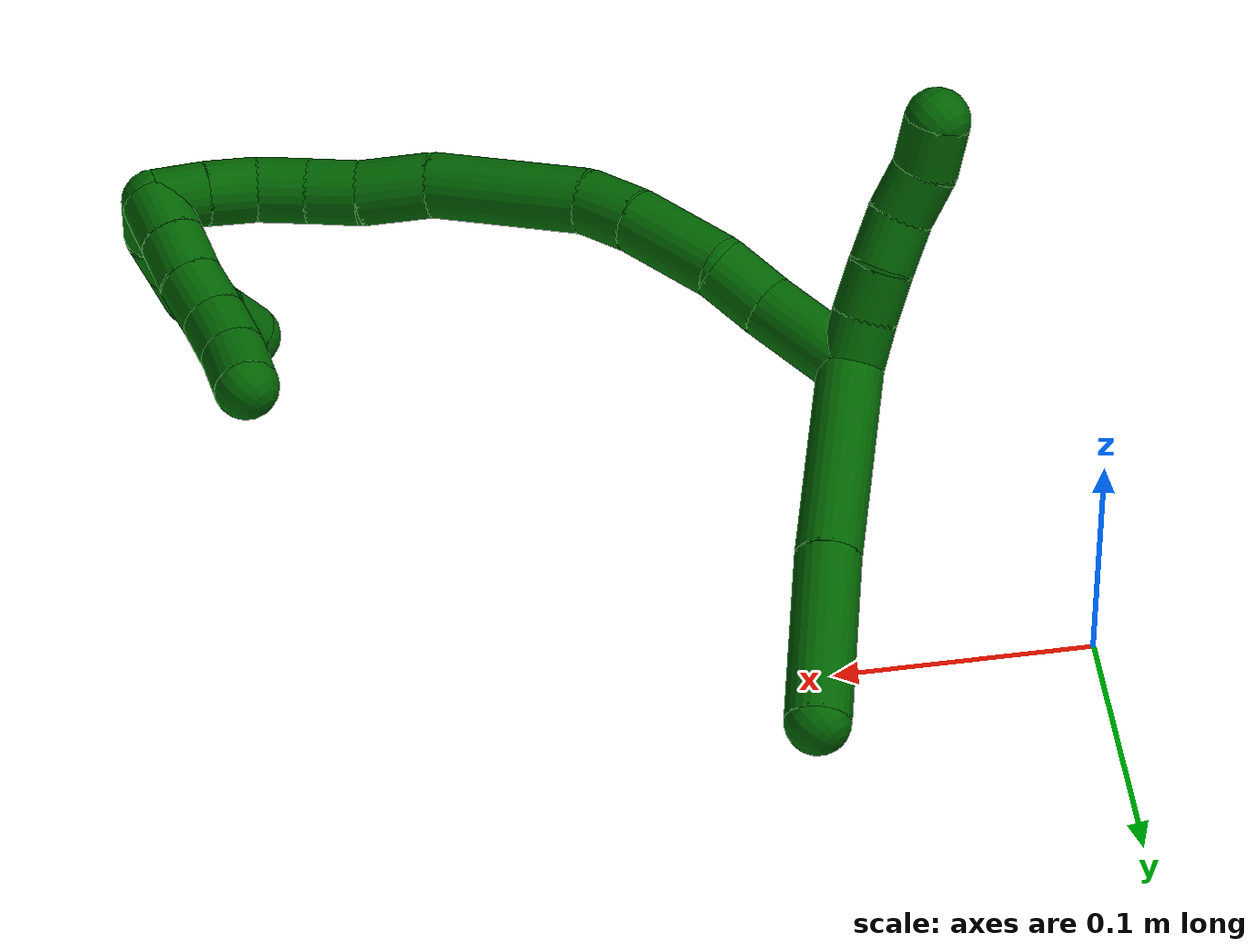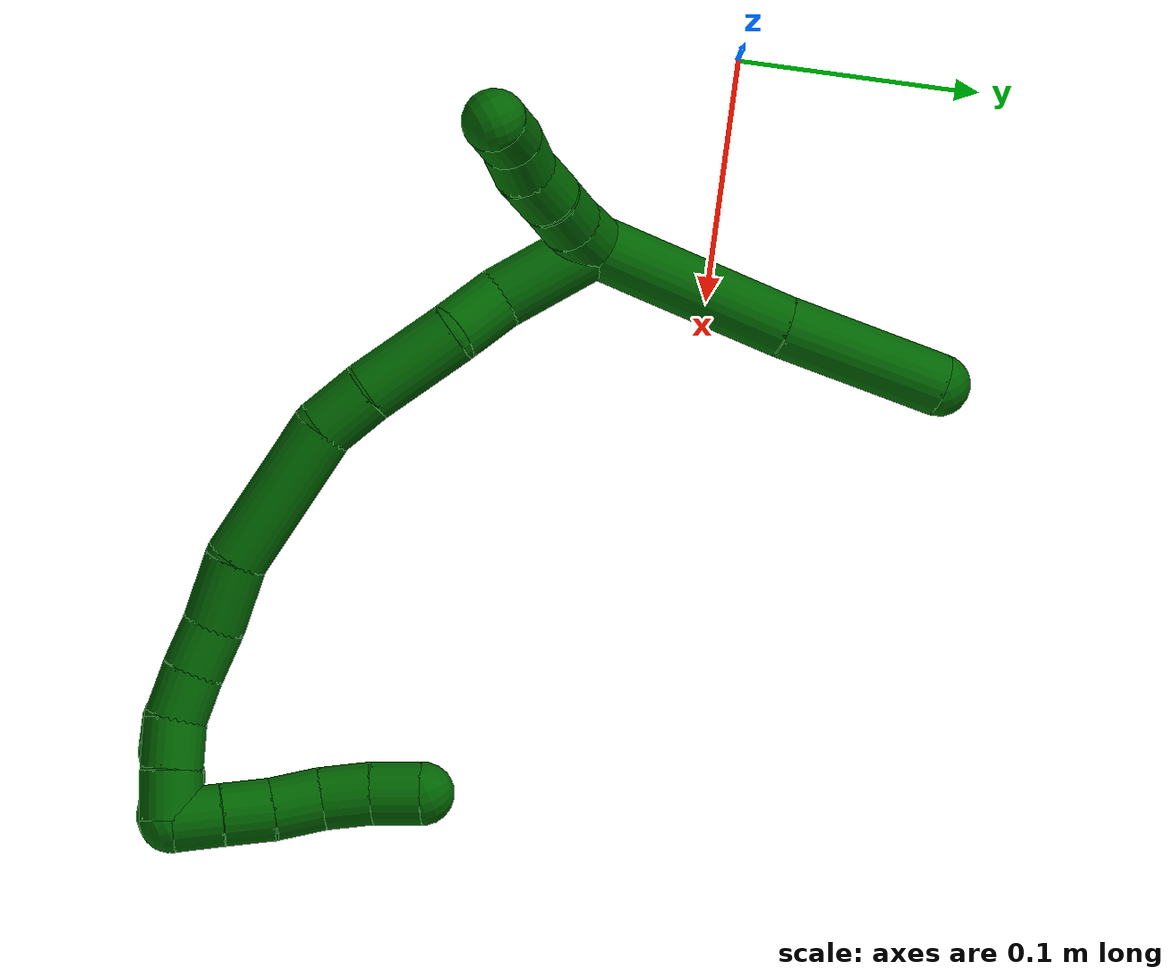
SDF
<sdf version="1.7">
 <world name="default">
  <model name="6">
   <static>0</static>
   <link name="6">
    <collision name="collision-cylinder-e_1_2_8">
     <pose>0.02612 -0.014613 0.027763 0.484508 0.694264 0.178323</pose>
     <geometry><cylinder><radius>0.0125</radius><length>0.081648</length></cylinder></geometry>
     <surface>
      <friction><ode><mu>1.16</mu><mu2>1.16</mu2><slip1>0</slip1><slip2>0</slip2></ode></friction>
      <contact><ode><kp>1e+06</kp><kd>1</kd><max_vel>0</max_vel><min_depth>0.001</min_depth></ode></contact>
     </surface>
    </collision>
    <visual name="visual-cylinder-e_1_2_8">
     <pose>0.02612 -0.014613 0.027763 0.484508 0.694264 0.178323</pose>
     <geometry><cylinder><radius>0.0125</radius><length>0.081648</length></cylinder></geometry>
     <material><ambient>0 0.392157 0.003922 1</ambient></material>
    </visual>
    <collision name="collision-cylinder-e_2_8_6">
     <pose>0.073308 -0.040519 0.079952 0.433045 0.664249 0.151446</pose>
     <geometry><cylinder><radius>0.0125</radius><length>0.068352</length></cylinder></geometry>
     <surface>
      <friction><ode><mu>1.16</mu><mu2>1.16</mu2><slip1>0</slip1><slip2>0</slip2></ode></friction>
      <contact><ode><kp>1e+06</kp><kd>1</kd><max_vel>0</max_vel><min_depth>0.001</min_depth></ode></contact>
     </surface>
    </collision>
    <visual name="visual-cylinder-e_2_8_6">
     <pose>0.073308 -0.040519 0.079952 0.433045 0.664249 0.151446</pose>
     <geometry><cylinder><radius>0.0125</radius><length>0.068352</length></cylinder></geometry>
     <material><ambient>0 0.392157 0.003922 1</ambient></material>
    </visual>
    <collision name="collision-cylinder-e_1_2_9">
     <pose>-0.008822 -0.002455 -0.004017 2.59302 -1.08058 -2.26435</pose>
     <geometry><cylinder><radius>0.0125</radius><length>0.02</length></cylinder></geometry>
     <surface>
      <friction><ode><mu>1.16</mu><mu2>1.16</mu2><slip1>0</slip1><slip2>0</slip2></ode></friction>
      <contact><ode><kp>1e+06</kp><kd>1</kd><max_vel>0</max_vel><min_depth>0.001</min_depth></ode></contact>
     </surface>
    </collision>
    <visual name="visual-cylinder-e_1_2_9">
     <pose>-0.008822 -0.002455 -0.004017 2.59302 -1.08058 -2.26435</pose>
     <geometry><cylinder><radius>0.0125</radius><length>0.02</length></cylinder></geometry>
     <material><ambient>0 0.392157 0.003922 1</ambient></material>
    </visual>
    <collision name="collision-cylinder-e_2_9_10">
     <pose>-0.026618 -0.007924 -0.011259 2.38999 -1.11371 -2.01187</pose>
     <geometry><cylinder><radius>0.0125</radius><length>0.02</length></cylinder></geometry>
     <surface>
      <friction><ode><mu>1.16</mu><mu2>1.16</mu2><slip1>0</slip1><slip2>0</slip2></ode></friction>
      <contact><ode><kp>1e+06</kp><kd>1</kd><max_vel>0</max_vel><min_depth>0.001</min_depth></ode></contact>
     </surface>
    </collision>
    <visual name="visual-cylinder-e_2_9_10">
     <pose>-0.026618 -0.007924 -0.011259 2.38999 -1.11371 -2.01187</pose>
     <geometry><cylinder><radius>0.0125</radius><length>0.02</length></cylinder></geometry>
     <material><ambient>0 0.392157 0.003922 1</ambient></material>
    </visual>
    <collision name="collision-cylinder-e_3_10_11">
     <pose>-0.044793 -0.012631 -0.018012 2.69402 -1.16858 -2.47867</pose>
     <geometry><cylinder><radius>0.0125</radius><length>0.02</length></cylinder></geometry>
     <surface>
      <friction><ode><mu>1.16</mu><mu2>1.16</mu2><slip1>0</slip1><slip2>0</slip2></ode></friction>
      <contact><ode><kp>1e+06</kp><kd>1</kd><max_vel>0</max_vel><min_depth>0.001</min_depth></ode></contact>
     </surface>
    </collision>
    <visual name="visual-cylinder-e_3_10_11">
     <pose>-0.044793 -0.012631 -0.018012 2.69402 -1.16858 -2.47867</pose>
     <geometry><cylinder><radius>0.0125</radius><length>0.02</length></cylinder></geometry>
     <material><ambient>0 0.392157 0.003922 1</ambient></material>
    </visual>
    <collision name="collision-cylinder-e_4_11_12">
     <pose>-0.063449 -0.017153 -0.023165 2.0919 -1.23867 -1.77733</pose>
     <geometry><cylinder><radius>0.0125</radius><length>0.02</length></cylinder></geometry>
     <surface>
      <friction><ode><mu>1.16</mu><mu2>1.16</mu2><slip1>0</slip1><slip2>0</slip2></ode></friction>
      <contact><ode><kp>1e+06</kp><kd>1</kd><max_vel>0</max_vel><min_depth>0.001</min_depth></ode></contact>
     </surface>
    </collision>
    <visual name="visual-cylinder-e_4_11_12">
     <pose>-0.063449 -0.017153 -0.023165 2.0919 -1.23867 -1.77733</pose>
     <geometry><cylinder><radius>0.0125</radius><length>0.02</length></cylinder></geometry>
     <material><ambient>0 0.392157 0.003922 1</ambient></material>
    </visual>
    <collision name="collision-cylinder-e_5_12_5">
     <pose>-0.081198 -0.024663 -0.027832 2.14732 -0.978267 -1.5516</pose>
     <geometry><cylinder><radius>0.0125</radius><length>0.02</length></cylinder></geometry>
     <surface>
      <friction><ode><mu>1.16</mu><mu2>1.16</mu2><slip1>0</slip1><slip2>0</slip2></ode></friction>
      <contact><ode><kp>1e+06</kp><kd>1</kd><max_vel>0</max_vel><min_depth>0.001</min_depth></ode></contact>
     </surface>
    </collision>
    <visual name="visual-cylinder-e_5_12_5">
     <pose>-0.081198 -0.024663 -0.027832 2.14732 -0.978267 -1.5516</pose>
     <geometry><cylinder><radius>0.0125</radius><length>0.02</length></cylinder></geometry>
     <material><ambient>0 0.392157 0.003922 1</ambient></material>
    </visual>
    <collision name="collision-cylinder-e_1_2_13">
     <pose>0.00331 0.002162 -0.020961 -3.03883 0.155828 -1.97662</pose>
     <geometry><cylinder><radius>0.0125</radius><length>0.042661</length></cylinder></geometry>
     <surface>
      <friction><ode><mu>1.16</mu><mu2>1.16</mu2><slip1>0</slip1><slip2>0</slip2></ode></friction>
      <contact><ode><kp>1e+06</kp><kd>1</kd><max_vel>0</max_vel><min_depth>0.001</min_depth></ode></contact>
     </surface>
    </collision>
    <visual name="visual-cylinder-e_1_2_13">
     <pose>0.00331 0.002162 -0.020961 -3.03883 0.155828 -1.97662</pose>
     <geometry><cylinder><radius>0.0125</radius><length>0.042661</length></cylinder></geometry>
     <material><ambient>0 0.392157 0.003922 1</ambient></material>
    </visual>
    <collision name="collision-cylinder-e_2_13_14">
     <pose>0.00769 0.001837 -0.053405 2.9284 0.090707 0.802299</pose>
     <geometry><cylinder><radius>0.0125</radius><length>0.023596</length></cylinder></geometry>
     <surface>
      <friction><ode><mu>1.16</mu><mu2>1.16</mu2><slip1>0</slip1><slip2>0</slip2></ode></friction>
      <contact><ode><kp>1e+06</kp><kd>1</kd><max_vel>0</max_vel><min_depth>0.001</min_depth></ode></contact>
     </surface>
    </collision>
    <visual name="visual-cylinder-e_2_13_14">
     <pose>0.00769 0.001837 -0.053405 2.9284 0.090707 0.802299</pose>
     <geometry><cylinder><radius>0.0125</radius><length>0.023596</length></cylinder></geometry>
     <material><ambient>0 0.392157 0.003922 1</ambient></material>
    </visual>
    <collision name="collision-cylinder-e_3_14_15">
     <pose>0.013962 0.000955 -0.084257 -3.059 0.261591 -2.53289</pose>
     <geometry><cylinder><radius>0.0125</radius><length>0.040238</length></cylinder></geometry>
     <surface>
      <friction><ode><mu>1.16</mu><mu2>1.16</mu2><slip1>0</slip1><slip2>0</slip2></ode></friction>
      <contact><ode><kp>1e+06</kp><kd>1</kd><max_vel>0</max_vel><min_depth>0.001</min_depth></ode></contact>
     </surface>
    </collision>
    <visual name="visual-cylinder-e_3_14_15">
     <pose>0.013962 0.000955 -0.084257 -3.059 0.261591 -2.53289</pose>
     <geometry><cylinder><radius>0.0125</radius><length>0.040238</length></cylinder></geometry>
     <material><ambient>0 0.392157 0.003922 1</ambient></material>
    </visual>
    <collision name="collision-cylinder-e_4_15_16">
     <pose>0.023351 0.00382 -0.114134 -3.02209 0.376652 -2.53327</pose>
     <geometry><cylinder><radius>0.0125</radius><length>0.022763</length></cylinder></geometry>
     <surface>
      <friction><ode><mu>1.16</mu><mu2>1.16</mu2><slip1>0</slip1><slip2>0</slip2></ode></friction>
      <contact><ode><kp>1e+06</kp><kd>1</kd><max_vel>0</max_vel><min_depth>0.001</min_depth></ode></contact>
     </surface>
    </collision>
    <visual name="visual-cylinder-e_4_15_16">
     <pose>0.023351 0.00382 -0.114134 -3.02209 0.376652 -2.53327</pose>
     <geometry><cylinder><radius>0.0125</radius><length>0.022763</length></cylinder></geometry>
     <material><ambient>0 0.392157 0.003922 1</ambient></material>
    </visual>
    <collision name="collision-cylinder-e_5_16_17">
     <pose>0.046226 0.004256 -0.149591 3.1085 0.642673 3.04224</pose>
     <geometry><cylinder><radius>0.0125</radius><length>0.062367</length></cylinder></geometry>
     <surface>
      <friction><ode><mu>1.16</mu><mu2>1.16</mu2><slip1>0</slip1><slip2>0</slip2></ode></friction>
      <contact><ode><kp>1e+06</kp><kd>1</kd><max_vel>0</max_vel><min_depth>0.001</min_depth></ode></contact>
     </surface>
    </collision>
    <visual name="visual-cylinder-e_5_16_17">
     <pose>0.046226 0.004256 -0.149591 3.1085 0.642673 3.04224</pose>
     <geometry><cylinder><radius>0.0125</radius><length>0.062367</length></cylinder></geometry>
     <material><ambient>0 0.392157 0.003922 1</ambient></material>
    </visual>
    <collision name="collision-cylinder-e_6_17_18">
     <pose>0.07571 0.001693 -0.18348 2.94972 0.869946 2.73317</pose>
     <geometry><cylinder><radius>0.0125</radius><length>0.028247</length></cylinder></geometry>
     <surface>
      <friction><ode><mu>1.16</mu><mu2>1.16</mu2><slip1>0</slip1><slip2>0</slip2></ode></friction>
      <contact><ode><kp>1e+06</kp><kd>1</kd><max_vel>0</max_vel><min_depth>0.001</min_depth></ode></contact>
     </surface>
    </collision>
    <visual name="visual-cylinder-e_6_17_18">
     <pose>0.07571 0.001693 -0.18348 2.94972 0.869946 2.73317</pose>
     <geometry><cylinder><radius>0.0125</radius><length>0.028247</length></cylinder></geometry>
     <material><ambient>0 0.392157 0.003922 1</ambient></material>
    </visual>
    <collision name="collision-cylinder-e_7_18_19">
     <pose>0.093124 -0.001931 -0.199758 2.88989 0.718112 2.49134</pose>
     <geometry><cylinder><radius>0.0125</radius><length>0.020121</length></cylinder></geometry>
     <surface>
      <friction><ode><mu>1.16</mu><mu2>1.16</mu2><slip1>0</slip1><slip2>0</slip2></ode></friction>
      <contact><ode><kp>1e+06</kp><kd>1</kd><max_vel>0</max_vel><min_depth>0.001</min_depth></ode></contact>
     </surface>
    </collision>
    <visual name="visual-cylinder-e_7_18_19">
     <pose>0.093124 -0.001931 -0.199758 2.88989 0.718112 2.49134</pose>
     <geometry><cylinder><radius>0.0125</radius><length>0.020121</length></cylinder></geometry>
     <material><ambient>0 0.392157 0.003922 1</ambient></material>
    </visual>
    <collision name="collision-cylinder-e_8_19_20">
     <pose>0.106394 -0.006524 -0.214057 2.77079 0.727409 2.22595</pose>
     <geometry><cylinder><radius>0.0125</radius><length>0.020002</length></cylinder></geometry>
     <surface>
      <friction><ode><mu>1.16</mu><mu2>1.16</mu2><slip1>0</slip1><slip2>0</slip2></ode></friction>
      <contact><ode><kp>1e+06</kp><kd>1</kd><max_vel>0</max_vel><min_depth>0.001</min_depth></ode></contact>
     </surface>
    </collision>
    <visual name="visual-cylinder-e_8_19_20">
     <pose>0.106394 -0.006524 -0.214057 2.77079 0.727409 2.22595</pose>
     <geometry><cylinder><radius>0.0125</radius><length>0.020002</length></cylinder></geometry>
     <material><ambient>0 0.392157 0.003922 1</ambient></material>
    </visual>
    <collision name="collision-cylinder-e_9_20_21">
     <pose>0.120096 -0.01428 -0.226 2.34944 0.782557 1.55725</pose>
     <geometry><cylinder><radius>0.0125</radius><length>0.020004</length></cylinder></geometry>
     <surface>
      <friction><ode><mu>1.16</mu><mu2>1.16</mu2><slip1>0</slip1><slip2>0</slip2></ode></friction>
      <contact><ode><kp>1e+06</kp><kd>1</kd><max_vel>0</max_vel><min_depth>0.001</min_depth></ode></contact>
     </surface>
    </collision>
    <visual name="visual-cylinder-e_9_20_21">
     <pose>0.120096 -0.01428 -0.226 2.34944 0.782557 1.55725</pose>
     <geometry><cylinder><radius>0.0125</radius><length>0.020004</length></cylinder></geometry>
     <material><ambient>0 0.392157 0.003922 1</ambient></material>
    </visual>
    <collision name="collision-cylinder-e_10_21_1">
     <pose>0.134604 -0.024376 -0.235335 2.28254 0.841269 1.54713</pose>
     <geometry><cylinder><radius>0.0125</radius><length>0.020001</length></cylinder></geometry>
     <surface>
      <friction><ode><mu>1.16</mu><mu2>1.16</mu2><slip1>0</slip1><slip2>0</slip2></ode></friction>
      <contact><ode><kp>1e+06</kp><kd>1</kd><max_vel>0</max_vel><min_depth>0.001</min_depth></ode></contact>
     </surface>
    </collision>
    <visual name="visual-cylinder-e_10_21_1">
     <pose>0.134604 -0.024376 -0.235335 2.28254 0.841269 1.54713</pose>
     <geometry><cylinder><radius>0.0125</radius><length>0.020001</length></cylinder></geometry>
     <material><ambient>0 0.392157 0.003922 1</ambient></material>
    </visual>
    <collision name="collision-cylinder-e_1_1_22">
     <pose>0.144206 -0.031934 -0.23025 0.259899 0.21635 0.028383</pose>
     <geometry><cylinder><radius>0.0125</radius><length>0.02</length></cylinder></geometry>
     <surface>
      <friction><ode><mu>1.16</mu><mu2>1.16</mu2><slip1>0</slip1><slip2>0</slip2></ode></friction>
      <contact><ode><kp>1e+06</kp><kd>1</kd><max_vel>0</max_vel><min_depth>0.001</min_depth></ode></contact>
     </surface>
    </collision>
    <visual name="visual-cylinder-e_1_1_22">
     <pose>0.144206 -0.031934 -0.23025 0.259899 0.21635 0.028383</pose>
     <geometry><cylinder><radius>0.0125</radius><length>0.02</length></cylinder></geometry>
     <material><ambient>0 0.392157 0.003922 1</ambient></material>
    </visual>
    <collision name="collision-cylinder-e_2_22_23">
     <pose>0.148777 -0.036726 -0.211382 0.237507 0.244878 0.029362</pose>
     <geometry><cylinder><radius>0.0125</radius><length>0.02</length></cylinder></geometry>
     <surface>
      <friction><ode><mu>1.16</mu><mu2>1.16</mu2><slip1>0</slip1><slip2>0</slip2></ode></friction>
      <contact><ode><kp>1e+06</kp><kd>1</kd><max_vel>0</max_vel><min_depth>0.001</min_depth></ode></contact>
     </surface>
    </collision>
    <visual name="visual-cylinder-e_2_22_23">
     <pose>0.148777 -0.036726 -0.211382 0.237507 0.244878 0.029362</pose>
     <geometry><cylinder><radius>0.0125</radius><length>0.02</length></cylinder></geometry>
     <material><ambient>0 0.392157 0.003922 1</ambient></material>
    </visual>
    <collision name="collision-cylinder-e_3_23_24">
     <pose>0.152654 -0.040946 -0.19225 0.197118 0.145833 0.014445</pose>
     <geometry><cylinder><radius>0.0125</radius><length>0.02</length></cylinder></geometry>
     <surface>
      <friction><ode><mu>1.16</mu><mu2>1.16</mu2><slip1>0</slip1><slip2>0</slip2></ode></friction>
      <contact><ode><kp>1e+06</kp><kd>1</kd><max_vel>0</max_vel><min_depth>0.001</min_depth></ode></contact>
     </surface>
    </collision>
    <visual name="visual-cylinder-e_3_23_24">
     <pose>0.152654 -0.040946 -0.19225 0.197118 0.145833 0.014445</pose>
     <geometry><cylinder><radius>0.0125</radius><length>0.02</length></cylinder></geometry>
     <material><ambient>0 0.392157 0.003922 1</ambient></material>
    </visual>
    <collision name="collision-cylinder-e_4_24_25">
     <pose>0.155453 -0.046575 -0.173352 0.381679 0.134983 0.026116</pose>
     <geometry><cylinder><radius>0.0125</radius><length>0.02</length></cylinder></geometry>
     <surface>
      <friction><ode><mu>1.16</mu><mu2>1.16</mu2><slip1>0</slip1><slip2>0</slip2></ode></friction>
      <contact><ode><kp>1e+06</kp><kd>1</kd><max_vel>0</max_vel><min_depth>0.001</min_depth></ode></contact>
     </surface>
    </collision>
    <visual name="visual-cylinder-e_4_24_25">
     <pose>0.155453 -0.046575 -0.173352 0.381679 0.134983 0.026116</pose>
     <geometry><cylinder><radius>0.0125</radius><length>0.02</length></cylinder></geometry>
     <material><ambient>0 0.392157 0.003922 1</ambient></material>
    </visual>
    <collision name="collision-cylinder-e_5_25_4">
     <pose>0.158696 -0.0549 -0.1555 0.491593 0.190844 0.048013</pose>
     <geometry><cylinder><radius>0.0125</radius><length>0.02</length></cylinder></geometry>
     <surface>
      <friction><ode><mu>1.16</mu><mu2>1.16</mu2><slip1>0</slip1><slip2>0</slip2></ode></friction>
      <contact><ode><kp>1e+06</kp><kd>1</kd><max_vel>0</max_vel><min_depth>0.001</min_depth></ode></contact>
     </surface>
    </collision>
    <visual name="visual-cylinder-e_5_25_4">
     <pose>0.158696 -0.0549 -0.1555 0.491593 0.190844 0.048013</pose>
     <geometry><cylinder><radius>0.0125</radius><length>0.02</length></cylinder></geometry>
     <material><ambient>0 0.392157 0.003922 1</ambient></material>
    </visual>
    <collision name="collision-cylinder-e_1_1_26">
     <pose>0.147111 -0.020841 -0.238787 -1.46612 0.529595 -0.478967</pose>
     <geometry><cylinder><radius>0.0125</radius><length>0.02</length></cylinder></geometry>
     <surface>
      <friction><ode><mu>1.16</mu><mu2>1.16</mu2><slip1>0</slip1><slip2>0</slip2></ode></friction>
      <contact><ode><kp>1e+06</kp><kd>1</kd><max_vel>0</max_vel><min_depth>0.001</min_depth></ode></contact>
     </surface>
    </collision>
    <visual name="visual-cylinder-e_1_1_26">
     <pose>0.147111 -0.020841 -0.238787 -1.46612 0.529595 -0.478967</pose>
     <geometry><cylinder><radius>0.0125</radius><length>0.02</length></cylinder></geometry>
     <material><ambient>0 0.392157 0.003922 1</ambient></material>
    </visual>
    <collision name="collision-cylinder-e_2_26_27">
     <pose>0.154922 -0.003173 -0.234746 -1.23803 0.279583 -0.199822</pose>
     <geometry><cylinder><radius>0.0125</radius><length>0.02</length></cylinder></geometry>
     <surface>
      <friction><ode><mu>1.16</mu><mu2>1.16</mu2><slip1>0</slip1><slip2>0</slip2></ode></friction>
      <contact><ode><kp>1e+06</kp><kd>1</kd><max_vel>0</max_vel><min_depth>0.001</min_depth></ode></contact>
     </surface>
    </collision>
    <visual name="visual-cylinder-e_2_26_27">
     <pose>0.154922 -0.003173 -0.234746 -1.23803 0.279583 -0.199822</pose>
     <geometry><cylinder><radius>0.0125</radius><length>0.02</length></cylinder></geometry>
     <material><ambient>0 0.392157 0.003922 1</ambient></material>
    </visual>
    <collision name="collision-cylinder-e_3_27_28">
     <pose>0.160431 0.014997 -0.228462 -1.23765 0.278517 -0.198976</pose>
     <geometry><cylinder><radius>0.0125</radius><length>0.02</length></cylinder></geometry>
     <surface>
      <friction><ode><mu>1.16</mu><mu2>1.16</mu2><slip1>0</slip1><slip2>0</slip2></ode></friction>
      <contact><ode><kp>1e+06</kp><kd>1</kd><max_vel>0</max_vel><min_depth>0.001</min_depth></ode></contact>
     </surface>
    </collision>
    <visual name="visual-cylinder-e_3_27_28">
     <pose>0.160431 0.014997 -0.228462 -1.23765 0.278517 -0.198976</pose>
     <geometry><cylinder><radius>0.0125</radius><length>0.02</length></cylinder></geometry>
     <material><ambient>0 0.392157 0.003922 1</ambient></material>
    </visual>
    <collision name="collision-cylinder-e_4_28_29">
     <pose>0.164175 0.033825 -0.223293 -1.36587 0.099678 -0.081114</pose>
     <geometry><cylinder><radius>0.0125</radius><length>0.02</length></cylinder></geometry>
     <surface>
      <friction><ode><mu>1.16</mu><mu2>1.16</mu2><slip1>0</slip1><slip2>0</slip2></ode></friction>
      <contact><ode><kp>1e+06</kp><kd>1</kd><max_vel>0</max_vel><min_depth>0.001</min_depth></ode></contact>
     </surface>
    </collision>
    <visual name="visual-cylinder-e_4_28_29">
     <pose>0.164175 0.033825 -0.223293 -1.36587 0.099678 -0.081114</pose>
     <geometry><cylinder><radius>0.0125</radius><length>0.02</length></cylinder></geometry>
     <material><ambient>0 0.392157 0.003922 1</ambient></material>
    </visual>
    <collision name="collision-cylinder-e_5_29_3">
     <pose>0.164895 0.052593 -0.216972 -1.12657 -0.027541 0.017393</pose>
     <geometry><cylinder><radius>0.0125</radius><length>0.02</length></cylinder></geometry>
     <surface>
      <friction><ode><mu>1.16</mu><mu2>1.16</mu2><slip1>0</slip1><slip2>0</slip2></ode></friction>
      <contact><ode><kp>1e+06</kp><kd>1</kd><max_vel>0</max_vel><min_depth>0.001</min_depth></ode></contact>
     </surface>
    </collision>
    <visual name="visual-cylinder-e_5_29_3">
     <pose>0.164895 0.052593 -0.216972 -1.12657 -0.027541 0.017393</pose>
     <geometry><cylinder><radius>0.0125</radius><length>0.02</length></cylinder></geometry>
     <material><ambient>0 0.392157 0.003922 1</ambient></material>
    </visual>
    <collision name="collision-sphere-3">
     <pose>0.16462 0.061619 -0.212676 0 -0 0</pose>
     <geometry><sphere><radius>0.0125</radius></sphere></geometry>
     <surface>
      <friction><ode><mu>1.16</mu><mu2>1.16</mu2><slip1>0</slip1><slip2>0</slip2></ode></friction>
      <contact><ode><kp>1e+06</kp><kd>1</kd><max_vel>0</max_vel><min_depth>0.001</min_depth></ode></contact>
     </surface>
    </collision>
    <visual name="visual-sphere-3">
     <pose>0.16462 0.061619 -0.212676 0 -0 0</pose>
     <geometry><sphere><radius>0.0125</radius></sphere></geometry>
     <material><ambient>0 0.392157 0.003922 1</ambient></material>
    </visual>
    <collision name="collision-sphere-29">
     <pose>0.165171 0.043567 -0.221268 0 -0 0</pose>
     <geometry><sphere><radius>0.0125</radius></sphere></geometry>
     <surface>
      <friction><ode><mu>1.16</mu><mu2>1.16</mu2><slip1>0</slip1><slip2>0</slip2></ode></friction>
      <contact><ode><kp>1e+06</kp><kd>1</kd><max_vel>0</max_vel><min_depth>0.001</min_depth></ode></contact>
     </surface>
    </collision>
    <visual name="visual-sphere-29">
     <pose>0.165171 0.043567 -0.221268 0 -0 0</pose>
     <geometry><sphere><radius>0.0125</radius></sphere></geometry>
     <material><ambient>0 0.392157 0.003922 1</ambient></material>
    </visual>
    <collision name="collision-sphere-28">
     <pose>0.16318 0.024083 -0.225318 0 -0 0</pose>
     <geometry><sphere><radius>0.0125</radius></sphere></geometry>
     <surface>
      <friction><ode><mu>1.16</mu><mu2>1.16</mu2><slip1>0</slip1><slip2>0</slip2></ode></friction>
      <contact><ode><kp>1e+06</kp><kd>1</kd><max_vel>0</max_vel><min_depth>0.001</min_depth></ode></contact>
     </surface>
    </collision>
    <visual name="visual-sphere-28">
     <pose>0.16318 0.024083 -0.225318 0 -0 0</pose>
     <geometry><sphere><radius>0.0125</radius></sphere></geometry>
     <material><ambient>0 0.392157 0.003922 1</ambient></material>
    </visual>
    <collision name="collision-sphere-27">
     <pose>0.157682 0.005911 -0.231606 0 -0 0</pose>
     <geometry><sphere><radius>0.0125</radius></sphere></geometry>
     <surface>
      <friction><ode><mu>1.16</mu><mu2>1.16</mu2><slip1>0</slip1><slip2>0</slip2></ode></friction>
      <contact><ode><kp>1e+06</kp><kd>1</kd><max_vel>0</max_vel><min_depth>0.001</min_depth></ode></contact>
     </surface>
    </collision>
    <visual name="visual-sphere-27">
     <pose>0.157682 0.005911 -0.231606 0 -0 0</pose>
     <geometry><sphere><radius>0.0125</radius></sphere></geometry>
     <material><ambient>0 0.392157 0.003922 1</ambient></material>
    </visual>
    <collision name="collision-sphere-26">
     <pose>0.152163 -0.012258 -0.237885 0 -0 0</pose>
     <geometry><sphere><radius>0.0125</radius></sphere></geometry>
     <surface>
      <friction><ode><mu>1.16</mu><mu2>1.16</mu2><slip1>0</slip1><slip2>0</slip2></ode></friction>
      <contact><ode><kp>1e+06</kp><kd>1</kd><max_vel>0</max_vel><min_depth>0.001</min_depth></ode></contact>
     </surface>
    </collision>
    <visual name="visual-sphere-26">
     <pose>0.152163 -0.012258 -0.237885 0 -0 0</pose>
     <geometry><sphere><radius>0.0125</radius></sphere></geometry>
     <material><ambient>0 0.392157 0.003922 1</ambient></material>
    </visual>
    <collision name="collision-sphere-4">
     <pose>0.160593 -0.059535 -0.146844 0 -0 0</pose>
     <geometry><sphere><radius>0.0125</radius></sphere></geometry>
     <surface>
      <friction><ode><mu>1.16</mu><mu2>1.16</mu2><slip1>0</slip1><slip2>0</slip2></ode></friction>
      <contact><ode><kp>1e+06</kp><kd>1</kd><max_vel>0</max_vel><min_depth>0.001</min_depth></ode></contact>
     </surface>
    </collision>
    <visual name="visual-sphere-4">
     <pose>0.160593 -0.059535 -0.146844 0 -0 0</pose>
     <geometry><sphere><radius>0.0125</radius></sphere></geometry>
     <material><ambient>0 0.392157 0.003922 1</ambient></material>
    </visual>
    <collision name="collision-sphere-25">
     <pose>0.156799 -0.050266 -0.164156 0 -0 0</pose>
     <geometry><sphere><radius>0.0125</radius></sphere></geometry>
     <surface>
      <friction><ode><mu>1.16</mu><mu2>1.16</mu2><slip1>0</slip1><slip2>0</slip2></ode></friction>
      <contact><ode><kp>1e+06</kp><kd>1</kd><max_vel>0</max_vel><min_depth>0.001</min_depth></ode></contact>
     </surface>
    </collision>
    <visual name="visual-sphere-25">
     <pose>0.156799 -0.050266 -0.164156 0 -0 0</pose>
     <geometry><sphere><radius>0.0125</radius></sphere></geometry>
     <material><ambient>0 0.392157 0.003922 1</ambient></material>
    </visual>
    <collision name="collision-sphere-24">
     <pose>0.154107 -0.042884 -0.182548 0 -0 0</pose>
     <geometry><sphere><radius>0.0125</radius></sphere></geometry>
     <surface>
      <friction><ode><mu>1.16</mu><mu2>1.16</mu2><slip1>0</slip1><slip2>0</slip2></ode></friction>
      <contact><ode><kp>1e+06</kp><kd>1</kd><max_vel>0</max_vel><min_depth>0.001</min_depth></ode></contact>
     </surface>
    </collision>
    <visual name="visual-sphere-24">
     <pose>0.154107 -0.042884 -0.182548 0 -0 0</pose>
     <geometry><sphere><radius>0.0125</radius></sphere></geometry>
     <material><ambient>0 0.392157 0.003922 1</ambient></material>
    </visual>
    <collision name="collision-sphere-23">
     <pose>0.151201 -0.039009 -0.201952 0 -0 0</pose>
     <geometry><sphere><radius>0.0125</radius></sphere></geometry>
     <surface>
      <friction><ode><mu>1.16</mu><mu2>1.16</mu2><slip1>0</slip1><slip2>0</slip2></ode></friction>
      <contact><ode><kp>1e+06</kp><kd>1</kd><max_vel>0</max_vel><min_depth>0.001</min_depth></ode></contact>
     </surface>
    </collision>
    <visual name="visual-sphere-23">
     <pose>0.151201 -0.039009 -0.201952 0 -0 0</pose>
     <geometry><sphere><radius>0.0125</radius></sphere></geometry>
     <material><ambient>0 0.392157 0.003922 1</ambient></material>
    </visual>
    <collision name="collision-sphere-22">
     <pose>0.146352 -0.034443 -0.220811 0 -0 0</pose>
     <geometry><sphere><radius>0.0125</radius></sphere></geometry>
     <surface>
      <friction><ode><mu>1.16</mu><mu2>1.16</mu2><slip1>0</slip1><slip2>0</slip2></ode></friction>
      <contact><ode><kp>1e+06</kp><kd>1</kd><max_vel>0</max_vel><min_depth>0.001</min_depth></ode></contact>
     </surface>
    </collision>
    <visual name="visual-sphere-22">
     <pose>0.146352 -0.034443 -0.220811 0 -0 0</pose>
     <geometry><sphere><radius>0.0125</radius></sphere></geometry>
     <material><ambient>0 0.392157 0.003922 1</ambient></material>
    </visual>
    <collision name="collision-sphere-1">
     <pose>0.142059 -0.029424 -0.239689 0 -0 0</pose>
     <geometry><sphere><radius>0.0125</radius></sphere></geometry>
     <surface>
      <friction><ode><mu>1.16</mu><mu2>1.16</mu2><slip1>0</slip1><slip2>0</slip2></ode></friction>
      <contact><ode><kp>1e+06</kp><kd>1</kd><max_vel>0</max_vel><min_depth>0.001</min_depth></ode></contact>
     </surface>
    </collision>
    <visual name="visual-sphere-1">
     <pose>0.142059 -0.029424 -0.239689 0 -0 0</pose>
     <geometry><sphere><radius>0.0125</radius></sphere></geometry>
     <material><ambient>0 0.392157 0.003922 1</ambient></material>
    </visual>
    <collision name="collision-sphere-21">
     <pose>0.127148 -0.019329 -0.230982 0 -0 0</pose>
     <geometry><sphere><radius>0.0125</radius></sphere></geometry>
     <surface>
      <friction><ode><mu>1.16</mu><mu2>1.16</mu2><slip1>0</slip1><slip2>0</slip2></ode></friction>
      <contact><ode><kp>1e+06</kp><kd>1</kd><max_vel>0</max_vel><min_depth>0.001</min_depth></ode></contact>
     </surface>
    </collision>
    <visual name="visual-sphere-21">
     <pose>0.127148 -0.019329 -0.230982 0 -0 0</pose>
     <geometry><sphere><radius>0.0125</radius></sphere></geometry>
     <material><ambient>0 0.392157 0.003922 1</ambient></material>
    </visual>
    <collision name="collision-sphere-11">
     <pose>-0.053995 -0.014326 -0.021541 0 -0 0</pose>
     <geometry><sphere><radius>0.0125</radius></sphere></geometry>
     <surface>
      <friction><ode><mu>1.16</mu><mu2>1.16</mu2><slip1>0</slip1><slip2>0</slip2></ode></friction>
      <contact><ode><kp>1e+06</kp><kd>1</kd><max_vel>0</max_vel><min_depth>0.001</min_depth></ode></contact>
     </surface>
    </collision>
    <visual name="visual-sphere-11">
     <pose>-0.053995 -0.014326 -0.021541 0 -0 0</pose>
     <geometry><sphere><radius>0.0125</radius></sphere></geometry>
     <material><ambient>0 0.392157 0.003922 1</ambient></material>
    </visual>
    <collision name="collision-sphere-10">
     <pose>-0.035591 -0.010937 -0.014483 0 -0 0</pose>
     <geometry><sphere><radius>0.0125</radius></sphere></geometry>
     <surface>
      <friction><ode><mu>1.16</mu><mu2>1.16</mu2><slip1>0</slip1><slip2>0</slip2></ode></friction>
      <contact><ode><kp>1e+06</kp><kd>1</kd><max_vel>0</max_vel><min_depth>0.001</min_depth></ode></contact>
     </surface>
    </collision>
    <visual name="visual-sphere-10">
     <pose>-0.035591 -0.010937 -0.014483 0 -0 0</pose>
     <geometry><sphere><radius>0.0125</radius></sphere></geometry>
     <material><ambient>0 0.392157 0.003922 1</ambient></material>
    </visual>
    <collision name="collision-sphere-6">
     <pose>0.094377 -0.051811 0.104378 0 -0 0</pose>
     <geometry><sphere><radius>0.0125</radius></sphere></geometry>
     <surface>
      <friction><ode><mu>1.16</mu><mu2>1.16</mu2><slip1>0</slip1><slip2>0</slip2></ode></friction>
      <contact><ode><kp>1e+06</kp><kd>1</kd><max_vel>0</max_vel><min_depth>0.001</min_depth></ode></contact>
     </surface>
    </collision>
    <visual name="visual-sphere-6">
     <pose>0.094377 -0.051811 0.104378 0 -0 0</pose>
     <geometry><sphere><radius>0.0125</radius></sphere></geometry>
     <material><ambient>0 0.392157 0.003922 1</ambient></material>
    </visual>
    <collision name="collision-sphere-9">
     <pose>-0.017645 -0.00491 -0.008035 0 -0 0</pose>
     <geometry><sphere><radius>0.0125</radius></sphere></geometry>
     <surface>
      <friction><ode><mu>1.16</mu><mu2>1.16</mu2><slip1>0</slip1><slip2>0</slip2></ode></friction>
      <contact><ode><kp>1e+06</kp><kd>1</kd><max_vel>0</max_vel><min_depth>0.001</min_depth></ode></contact>
     </surface>
    </collision>
    <visual name="visual-sphere-9">
     <pose>-0.017645 -0.00491 -0.008035 0 -0 0</pose>
     <geometry><sphere><radius>0.0125</radius></sphere></geometry>
     <material><ambient>0 0.392157 0.003922 1</ambient></material>
    </visual>
    <collision name="collision-sphere-2">
     <geometry><sphere><radius>0.0125</radius></sphere></geometry>
     <surface>
      <friction><ode><mu>1.16</mu><mu2>1.16</mu2><slip1>0</slip1><slip2>0</slip2></ode></friction>
      <contact><ode><kp>1e+06</kp><kd>1</kd><max_vel>0</max_vel><min_depth>0.001</min_depth></ode></contact>
     </surface>
    </collision>
    <visual name="visual-sphere-2">
     <geometry><sphere><radius>0.0125</radius></sphere></geometry>
     <material><ambient>0 0.392157 0.003922 1</ambient></material>
    </visual>
    <collision name="collision-sphere-19">
     <pose>0.099744 -0.003818 -0.207095 0 -0 0</pose>
     <geometry><sphere><radius>0.0125</radius></sphere></geometry>
     <surface>
      <friction><ode><mu>1.16</mu><mu2>1.16</mu2><slip1>0</slip1><slip2>0</slip2></ode></friction>
      <contact><ode><kp>1e+06</kp><kd>1</kd><max_vel>0</max_vel><min_depth>0.001</min_depth></ode></contact>
     </surface>
    </collision>
    <visual name="visual-sphere-19">
     <pose>0.099744 -0.003818 -0.207095 0 -0 0</pose>
     <geometry><sphere><radius>0.0125</radius></sphere></geometry>
     <material><ambient>0 0.392157 0.003922 1</ambient></material>
    </visual>
    <collision name="collision-sphere-8">
     <pose>0.05224 -0.029227 0.055526 0 -0 0</pose>
     <geometry><sphere><radius>0.0125</radius></sphere></geometry>
     <surface>
      <friction><ode><mu>1.16</mu><mu2>1.16</mu2><slip1>0</slip1><slip2>0</slip2></ode></friction>
      <contact><ode><kp>1e+06</kp><kd>1</kd><max_vel>0</max_vel><min_depth>0.001</min_depth></ode></contact>
     </surface>
    </collision>
    <visual name="visual-sphere-8">
     <pose>0.05224 -0.029227 0.055526 0 -0 0</pose>
     <geometry><sphere><radius>0.0125</radius></sphere></geometry>
     <material><ambient>0 0.392157 0.003922 1</ambient></material>
    </visual>
    <collision name="collision-sphere-12">
     <pose>-0.072902 -0.019981 -0.024788 0 -0 0</pose>
     <geometry><sphere><radius>0.0125</radius></sphere></geometry>
     <surface>
      <friction><ode><mu>1.16</mu><mu2>1.16</mu2><slip1>0</slip1><slip2>0</slip2></ode></friction>
      <contact><ode><kp>1e+06</kp><kd>1</kd><max_vel>0</max_vel><min_depth>0.001</min_depth></ode></contact>
     </surface>
    </collision>
    <visual name="visual-sphere-12">
     <pose>-0.072902 -0.019981 -0.024788 0 -0 0</pose>
     <geometry><sphere><radius>0.0125</radius></sphere></geometry>
     <material><ambient>0 0.392157 0.003922 1</ambient></material>
    </visual>
    <collision name="collision-sphere-5">
     <pose>-0.089493 -0.029345 -0.030876 0 -0 0</pose>
     <geometry><sphere><radius>0.0125</radius></sphere></geometry>
     <surface>
      <friction><ode><mu>1.16</mu><mu2>1.16</mu2><slip1>0</slip1><slip2>0</slip2></ode></friction>
      <contact><ode><kp>1e+06</kp><kd>1</kd><max_vel>0</max_vel><min_depth>0.001</min_depth></ode></contact>
     </surface>
    </collision>
    <visual name="visual-sphere-5">
     <pose>-0.089493 -0.029345 -0.030876 0 -0 0</pose>
     <geometry><sphere><radius>0.0125</radius></sphere></geometry>
     <material><ambient>0 0.392157 0.003922 1</ambient></material>
    </visual>
    <collision name="collision-sphere-13">
     <pose>0.006621 0.004323 -0.041922 0 -0 0</pose>
     <geometry><sphere><radius>0.0125</radius></sphere></geometry>
     <surface>
      <friction><ode><mu>1.16</mu><mu2>1.16</mu2><slip1>0</slip1><slip2>0</slip2></ode></friction>
      <contact><ode><kp>1e+06</kp><kd>1</kd><max_vel>0</max_vel><min_depth>0.001</min_depth></ode></contact>
     </surface>
    </collision>
    <visual name="visual-sphere-13">
     <pose>0.006621 0.004323 -0.041922 0 -0 0</pose>
     <geometry><sphere><radius>0.0125</radius></sphere></geometry>
     <material><ambient>0 0.392157 0.003922 1</ambient></material>
    </visual>
    <collision name="collision-sphere-14">
     <pose>0.008758 -0.000649 -0.064889 0 -0 0</pose>
     <geometry><sphere><radius>0.0125</radius></sphere></geometry>
     <surface>
      <friction><ode><mu>1.16</mu><mu2>1.16</mu2><slip1>0</slip1><slip2>0</slip2></ode></friction>
      <contact><ode><kp>1e+06</kp><kd>1</kd><max_vel>0</max_vel><min_depth>0.001</min_depth></ode></contact>
     </surface>
    </collision>
    <visual name="visual-sphere-14">
     <pose>0.008758 -0.000649 -0.064889 0 -0 0</pose>
     <geometry><sphere><radius>0.0125</radius></sphere></geometry>
     <material><ambient>0 0.392157 0.003922 1</ambient></material>
    </visual>
    <collision name="collision-sphere-15">
     <pose>0.019165 0.002558 -0.103626 0 -0 0</pose>
     <geometry><sphere><radius>0.0125</radius></sphere></geometry>
     <surface>
      <friction><ode><mu>1.16</mu><mu2>1.16</mu2><slip1>0</slip1><slip2>0</slip2></ode></friction>
      <contact><ode><kp>1e+06</kp><kd>1</kd><max_vel>0</max_vel><min_depth>0.001</min_depth></ode></contact>
     </surface>
    </collision>
    <visual name="visual-sphere-15">
     <pose>0.019165 0.002558 -0.103626 0 -0 0</pose>
     <geometry><sphere><radius>0.0125</radius></sphere></geometry>
     <material><ambient>0 0.392157 0.003922 1</ambient></material>
    </visual>
    <collision name="collision-sphere-16">
     <pose>0.027537 0.005082 -0.124642 0 -0 0</pose>
     <geometry><sphere><radius>0.0125</radius></sphere></geometry>
     <surface>
      <friction><ode><mu>1.16</mu><mu2>1.16</mu2><slip1>0</slip1><slip2>0</slip2></ode></friction>
      <contact><ode><kp>1e+06</kp><kd>1</kd><max_vel>0</max_vel><min_depth>0.001</min_depth></ode></contact>
     </surface>
    </collision>
    <visual name="visual-sphere-16">
     <pose>0.027537 0.005082 -0.124642 0 -0 0</pose>
     <geometry><sphere><radius>0.0125</radius></sphere></geometry>
     <material><ambient>0 0.392157 0.003922 1</ambient></material>
    </visual>
    <collision name="collision-sphere-17">
     <pose>0.064916 0.00343 -0.174539 0 -0 0</pose>
     <geometry><sphere><radius>0.0125</radius></sphere></geometry>
     <surface>
      <friction><ode><mu>1.16</mu><mu2>1.16</mu2><slip1>0</slip1><slip2>0</slip2></ode></friction>
      <contact><ode><kp>1e+06</kp><kd>1</kd><max_vel>0</max_vel><min_depth>0.001</min_depth></ode></contact>
     </surface>
    </collision>
    <visual name="visual-sphere-17">
     <pose>0.064916 0.00343 -0.174539 0 -0 0</pose>
     <geometry><sphere><radius>0.0125</radius></sphere></geometry>
     <material><ambient>0 0.392157 0.003922 1</ambient></material>
    </visual>
    <collision name="collision-sphere-18">
     <pose>0.086505 -4.4e-05 -0.192421 0 -0 0</pose>
     <geometry><sphere><radius>0.0125</radius></sphere></geometry>
     <surface>
      <friction><ode><mu>1.16</mu><mu2>1.16</mu2><slip1>0</slip1><slip2>0</slip2></ode></friction>
      <contact><ode><kp>1e+06</kp><kd>1</kd><max_vel>0</max_vel><min_depth>0.001</min_depth></ode></contact>
     </surface>
    </collision>
    <visual name="visual-sphere-18">
     <pose>0.086505 -4.4e-05 -0.192421 0 -0 0</pose>
     <geometry><sphere><radius>0.0125</radius></sphere></geometry>
     <material><ambient>0 0.392157 0.003922 1</ambient></material>
    </visual>
    <collision name="collision-sphere-20">
     <pose>0.113043 -0.009231 -0.221019 0 -0 0</pose>
     <geometry><sphere><radius>0.0125</radius></sphere></geometry>
     <surface>
      <friction><ode><mu>1.16</mu><mu2>1.16</mu2><slip1>0</slip1><slip2>0</slip2></ode></friction>
      <contact><ode><kp>1e+06</kp><kd>1</kd><max_vel>0</max_vel><min_depth>0.001</min_depth></ode></contact>
     </surface>
    </collision>
    <visual name="visual-sphere-20">
     <pose>0.113043 -0.009231 -0.221019 0 -0 0</pose>
     <geometry><sphere><radius>0.0125</radius></sphere></geometry>
     <material><ambient>0 0.392157 0.003922 1</ambient></material>
    </visual>
    <inertial>
     <pose>0.065608 -0.011068 -0.10165 0 -0 0</pose>
     <mass>0.75</mass>
     <inertia>
      <ixx>5.8e-05</ixx>
      <ixy>0</ixy>
      <ixz>0</ixz>
      <iyy>0.000124</iyy>
      <iyz>0</iyz>
      <izz>-4.6e-05</izz>
     </inertia>
    </inertial>
   </link>
   <pose>0.087689 -0.047742 0.11874 -1.8055 0.608903 0.438825</pose>
  </model>
 </world>
</sdf>
